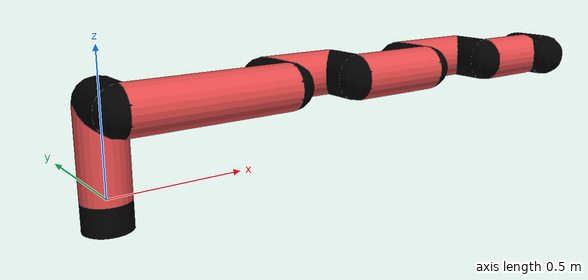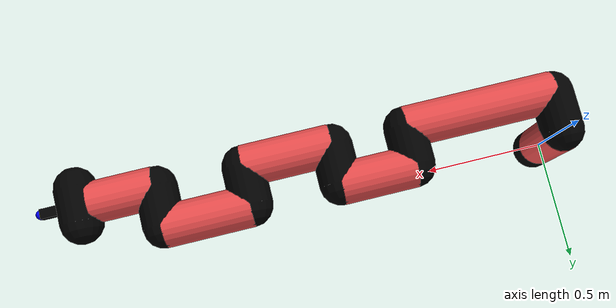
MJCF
<mujoco model="manipulator">
		<compiler angle="degree" coordinate="local" inertiafromgeom="auto" meshdir="meshes/"/>
		<option gravity="0 0 0" integrator="RK4" iterations="30" timestep="0.01"/>

		<default>
		<joint armature="1" limited="true" stiffness="10" damping="15" frictionloss="5.0"/>
		<geom conaffinity="1" condim="3" contype="1" friction=".5 .1 .1" margin="0.002"/>
		<motor ctrllimited="true"/>
		<position ctrllimited="true"/>
		</default>

		<asset>
		<texture builtin="gradient" height="100" rgb1="1.0 1.0 1.0" rgb2="1.0 1.0 1.0" type="skybox" width="100"/>
		<texture builtin="flat" height="32" name="arm_tex" rgb1="0.9 0.3 0.3" type="2d" width="32"/>
		<texture builtin="flat" height="32" name="gripper_tex" rgb1="0.0 0.0 0.0" type="cube" width="32"/>

		<material name="arm_mat" shininess="0.1" specular="0.1" texture="arm_tex"/>
		<material name="gripper_mat" shininess="1" specular="1" texture="gripper_tex"/>
		</asset>

		<worldbody>
		<light cutoff="45" diffuse=".8 .8 .8" dir="0 0.16 -1" directional="false" name="light" pos="0 -2.0 8.0" specular="0.3 0.3 0.3"/>

		<body name="base_link" pos="0 0 -0.1">
		<geom fromto="0 0 0 0 0 0.1" material="arm_mat" name="base_link" rgba="0.0 0.0 0.0 1" size="0.085" type="cylinder"/>
		</body>

		<body name="l1" pos="0 0 0">
<geom fromto="0 0 0 0 0 0.32" material="arm_mat" name="l1" rgba="0.9 0.3 0.3 1" size="0.085" type="cylinder"/>
<geom fromto="0 0 0.32 0 -0.16 0.32" material="arm_mat" name="l1_ex" rgba="0.0 0.0 0.0 1" size="0.085" type="capsule"/>
<joint axis="0 0 1" name="j1" pos="0 0 0" range="-90 90" damping="26.77" frictionloss="11.84"/>

<body name="l2" pos="0 -0.16 0.32">
<geom fromto="0 0 0 0.61 0 0" material="arm_mat" name="l2" rgba="0.9 0.3 0.3 1" size="0.085" type="cylinder"/>
<geom fromto="0.61 0 0 0.61 0.16 0" material="arm_mat" name="l2_ex" rgba="0.0 0.0 0.0 1" size="0.085" type="capsule"/>
<joint axis="0.0 1.0 0.0" name="j2" pos="0 0 0" range="-90 60" damping="29.22" frictionloss="10.91"/>

<body name="l3" pos="0.61 0.16 0">
<geom fromto="0 0 0 0.3 0 0" material="arm_mat" name="l3" rgba="0.9 0.3 0.3 1" size="0.085" type="cylinder"/>
<geom fromto="0.3 0 0 0.3 -0.16 0" material="arm_mat" name="l3_ex" rgba="0.0 0.0 0.0 1" size="0.085" type="capsule"/>
<joint axis="0.0 1.0 0.0" name="j3" pos="0 0 0" range="-30 60" damping="34.81" frictionloss="11.69"/>

<body name="l4" pos="0.3 -0.16 0">
<geom fromto="0 0 0 0.36 0 0" material="arm_mat" name="l4" rgba="0.9 0.3 0.3 1" size="0.085" type="cylinder"/>
<geom fromto="0.36 0 0 0.36 0.16 0" material="arm_mat" name="l4_ex" rgba="0.0 0.0 0.0 1" size="0.085" type="capsule"/>
<joint axis="0.0 1.0 0.0" name="j4" pos="0 0 0" range="-30 60" damping="26.22" frictionloss="8.29"/>

<body name="l5" pos="0.36 0.16 0">
<geom fromto="0 0 0 0.35 0 0" material="arm_mat" name="l5" rgba="0.9 0.3 0.3 1" size="0.085" type="cylinder"/>
<geom fromto="0.35 0 0 0.35 -0.16 0" material="arm_mat" name="l5_ex" rgba="0.0 0.0 0.0 1" size="0.085" type="capsule"/>
<joint axis="0.0 1.0 0.0" name="j5" pos="0 0 0" range="-30 60" damping="28.68" frictionloss="7.65"/>

<body name="l6" pos="0.35 -0.16 0">
<geom fromto="0 0 0 0.26 0 0" material="arm_mat" name="l6" rgba="0.9 0.3 0.3 1" size="0.085" type="cylinder"/>
<joint axis="0.0 1.0 0.0" name="j6" pos="0 0 0" range="-30 60" damping="23.58" frictionloss="8.33"/>

<body name="gripper" pos="0.26 0 0">
<geom fromto="0.05 -0.07 0 0.05 0.07 0" material="gripper_mat" name="gripper" rgba="0.0 0.0 0.0 1" size="0.085" type="capsule"/><joint axis="1 0 0" name="j7" pos="0 0 0" range="-90 90" damping="15" frictionloss="5.0"/><body name="finger" pos="0.1 0 0">
<geom fromto="0 0.0 0 0.1 0.0 0" material="gripper_mat" name="finger" rgba="0.0 0.0 0.0 1" size="0.020 0.06 0.06" type="box"/>
</body>
<site name="current" pos="0.2 0. 0.0" rgba="0. 0. 1.0 1" size="0.02" type="sphere"/>
</body>
</body>
</body>
</body>
</body>
</body>
</body>
</worldbody>
<actuator>
<motor ctrllimited="true" ctrlrange="-1.0 1.0" joint="j1" gear="62.63"/>
<motor ctrllimited="true" ctrlrange="-1.0 1.0" joint="j2" gear="95.76"/>
<motor ctrllimited="true" ctrlrange="-1.0 1.0" joint="j3" gear="80.36"/>
<motor ctrllimited="true" ctrlrange="-1.0 1.0" joint="j4" gear="88.32"/>
<motor ctrllimited="true" ctrlrange="-1.0 1.0" joint="j5" gear="77.17"/>
<motor ctrllimited="true" ctrlrange="-1.0 1.0" joint="j6" gear="84.09"/>
<motor ctrllimited="true" ctrlrange="-1.0 1.0" joint="j7" gear="80"/>
</actuator>
</mujoco>
